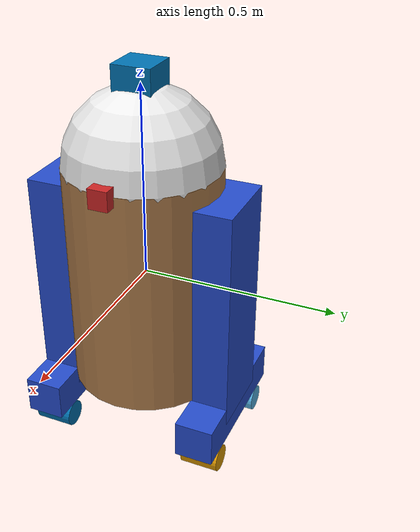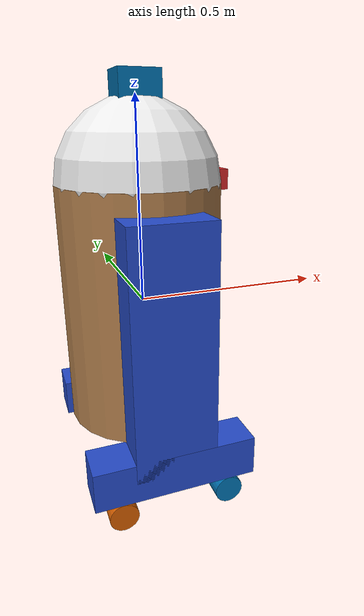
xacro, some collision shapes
<?xml version="1.0"?>
<robot name="r2d2_bot" xmlns:xacro="http://www.ros.org/wiki/xacro">

  <xacro:include filename="$(find r2d2_bot)/urdf/r2d2_bot.gazebo" />

    <link name="robot_footprint"></link>

    <joint name="robot_footprint_joint" type="fixed">
        <origin xyz="0 0 0" rpy="0 0 0"/>
        <parent link="robot_footprint"/>
        <child link="chassis"/>
    </joint>

    <link name='chassis'>
        <pose>0 0 0.1 0 0 0</pose>

        <inertial>
            <mass value="15.0"/>
            <origin xyz="0.0 0 0" rpy=" 0 0 0"/>
            <inertia
                    ixx="0.1" ixy="0" ixz="0"
                    iyy="0.1" iyz="0"
                    izz="0.1"
            />
        </inertial>

        <collision name='collision'>
            <origin xyz="0 0 0" rpy=" 0 0 0"/>
            <geometry>
                <cylinder length="0.6" radius="0.2"/>
            </geometry>
        </collision>

        <visual name='chassis_visual'>
            <origin xyz="0 0 0" rpy=" 0 0 0"/>
            <geometry>
                <cylinder length="0.6" radius="0.2"/>
            </geometry>
        </visual>

    </link>

    <link name="right_leg">
        <pose>0 0 0.1 0 0 0</pose>
        <inertial>
            <mass value="5.0"/>
            <origin xyz="0.0 0 -0.3" rpy=" 0 1.5707 0"/>
            <inertia
                    ixx="0.1" ixy="0" ixz="0"
                    iyy="0.1" iyz="0"
                    izz="0.1"
            />
        </inertial>
        <collision name='left_wheel_collision'>
            <origin xyz="0.0 0 -0.3" rpy=" 0 1.5707 0"/>
            <geometry>
                <cylinder radius="0.1" length="0.05"/>
            </geometry>
        </collision>
        <visual>
            <geometry>
                <box size="0.6 0.1 0.2"/>
            </geometry>
            <origin rpy="0 1.57075 0" xyz="0 0 -0.3"/>
        </visual>
    </link>

    <joint name="base_to_right_leg" type="fixed">
        <parent link="chassis"/>
        <child link="right_leg"/>
        <origin xyz="0 -0.22 0.25" rpy="0 0 0"/>
        <axis xyz="0 1 0" rpy="0 0 0" />
    </joint>

    <link name="right_base">
        <pose>0 0 0.1 0 0 0</pose>
        <inertial>
            <mass value="5.0"/>
            <origin xyz="0.0 0 0" rpy=" 0 0 0"/>
            <inertia
                    ixx="0.1" ixy="0" ixz="0"
                    iyy="0.1" iyz="0"
                    izz="0.1"
            />
        </inertial>
        <collision name='left_wheel_collision'>
            <origin xyz="0 0 0" rpy=" 0 0 0"/>
            <geometry>
                <box size="0.4 0.1 0.1"/>
            </geometry>
        </collision>
        <visual>
            <origin xyz="0 0 0" rpy=" 0 0 0"/>
            <geometry>
                <box size="0.4 0.1 0.1"/>
            </geometry>
        </visual>
    </link>

    <joint name="right_base_joint" type="fixed">
        <parent link="right_leg"/>
        <child link="right_base"/>
        <origin xyz="0 0 -0.6"/>
    </joint>

    <link name="right_front_wheel">
        <pose>0 0 0.1 0 0 0</pose>
        <collision name='collision'>
            <origin rpy="1.57075 0 0" xyz="0 0 0"/>
            <geometry>
                <cylinder length="0.1" radius="0.035"/>
            </geometry>
        </collision>

        <visual>
            <origin rpy="1.57075 0 0" xyz="0 0 0"/>
            <geometry>
                <cylinder length="0.1" radius="0.035"/>
            </geometry>
        </visual>
    </link>
    <joint name="right_front_wheel_joint" type="fixed">
        <parent link="right_base"/>
        <child link="right_front_wheel"/>
        <origin rpy="0 0 0" xyz="0.133333333333 0 -0.085"/>
        <axis xyz="0 1 0" rpy="0 0 0"/>
    </joint>
    <link name="right_back_wheel">
        <pose>0 0 0.1 0 0 0</pose>
        <collision name='collision'>
            <origin rpy="1.57075 0 0" xyz="0 0 0"/>
            <geometry>
                <cylinder length="0.1" radius="0.035"/>
            </geometry>
        </collision>

        <visual>
            <origin rpy="1.57075 0 0" xyz="0 0 0"/>
            <geometry>
                <cylinder length="0.1" radius="0.035"/>
            </geometry>
        </visual>
    </link>
    <joint name="right_back_wheel_joint" type="fixed">
        <parent link="right_base"/>
        <child link="right_back_wheel"/>
        <origin rpy="0 0 0" xyz="-0.133333333333 0 -0.085"/>
    </joint>

    <link name="left_leg">
        <collision name='collision'>
            <origin rpy="0 1.57075 0" xyz="0 0 -0.3"/>
            <geometry>
                <cylinder length="0.1" radius="0.035"/>
            </geometry>
        </collision>
        <visual>
            <geometry>
                <box size="0.6 0.1 0.2"/>
            </geometry>
            <origin rpy="0 1.57075 0" xyz="0 0 -0.3"/>
        </visual>
    </link>

    <joint name="base_to_left_leg" type="fixed">
        <parent link="chassis"/>
        <child link="left_leg"/>
        <origin xyz="0 0.22 0.25"/>
    </joint>

    <link name="left_base">
        <collision name='left_wheel_collision'>
            <origin xyz="0 0 0" rpy=" 0 0 0"/>
            <geometry>
                <box size="0.4 0.1 0.1"/>
            </geometry>
        </collision>
        <visual>
            <geometry>
                <box size="0.4 0.1 0.1"/>
            </geometry>
            <origin xyz="0 0 0" rpy=" 0 0 0"/>
        </visual>
    </link>

    <joint name="left_base_joint" type="fixed">
        <parent link="left_leg"/>
        <child link="left_base"/>
        <origin xyz="0 0 -0.6"/>
    </joint>

    <link name="left_front_wheel">
        <pose>0 0 0.1 0 0 0</pose>
        <collision name='collision'>
            <origin rpy="1.57075 0 0" xyz="0 0 0"/>
            <geometry>
                <cylinder length="0.1" radius="0.035"/>
            </geometry>
        </collision>

        <visual>
            <origin rpy="1.57075 0 0" xyz="0 0 0"/>
            <geometry>
                <cylinder length="0.1" radius="0.035"/>
            </geometry>
        </visual>
    </link>
    <joint name="left_front_wheel_joint" type="fixed">
        <parent link="left_base"/>
        <child link="left_front_wheel"/>
        <origin rpy="0 0 0" xyz="0.133333333333 0 -0.085"/>
        <axis xyz="0 1 0" rpy="0 0 0"/>
    </joint>
    <link name="left_back_wheel">
        <pose>0 0 0.1 0 0 0</pose>
        <collision name='collision'>
            <origin rpy="1.57075 0 0" xyz="0 0 0"/>
            <geometry>
                <cylinder length="0.1" radius="0.035"/>
            </geometry>
        </collision>

        <visual>
            <origin rpy="1.57075 0 0" xyz="0 0 0"/>
            <geometry>
                <cylinder length="0.1" radius="0.035"/>
            </geometry>
        </visual>
    </link>
    <joint name="left_back_wheel_joint" type="fixed">
        <parent link="left_base"/>
        <child link="left_back_wheel"/>
        <origin rpy="0 0 0" xyz="-0.133333333333 0 -0.085"/>
    </joint>

    <link name="head">
        <visual>
            <geometry>
                <sphere radius="0.2"/>
            </geometry>
        </visual>
    </link>
    <joint name="head_swivel" type="fixed">
        <parent link="chassis"/>
        <child link="head"/>
        <origin xyz="0 0 0.3"/>
    </joint>

    <link name='camera'>
        <pose>0 0 0.1 0 0 0</pose>

        <inertial>
            <mass value="0.1"/>
            <origin xyz="0.0 0 0" rpy=" 0 0 0"/>
            <inertia
                    ixx="1e-6" ixy="0" ixz="0"
                    iyy="1e-6" iyz="0"
                    izz="1e-6"
            />
        </inertial>

        <collision name='camera_collision'>
            <origin xyz="0.0 0 0" rpy=" 0 0 0"/>
            <geometry>
                <box size=".05 .05 .05"/>
            </geometry>
        </collision>

        <visual name='camera_visual'>
            <origin xyz="0.0 0 0" rpy=" 0 0 0"/>
            <geometry>
                <box size=".05 .05 .05"/>
            </geometry>
        </visual>
    </link>

    <joint type="fixed" name="camera_joint">
        <origin xyz="0.2 0 0" rpy="0 0 0"/>
        <child link="camera"/>
        <parent link="head"/>
        <axis xyz="0 1 0" rpy="0 0 0"/>
        <limit effort="10000" velocity="1000"/>
        <joint_properties damping="1.0" friction="1.0"/>
    </joint>

    <!--Laser RangeFinder-->
    <link name='hokuyo'>
        <pose>0 0 0.1 0 0 0</pose>

        <inertial>
            <mass value="0.1"/>
            <origin xyz="0.0 0 0" rpy=" 0 0 0"/>
            <inertia
                    ixx="1e-6" ixy="0" ixz="0"
                    iyy="1e-6" iyz="0"
                    izz="1e-6"
            />
        </inertial>

        <collision name='hokuyo_collision'>
            <origin xyz="0.0 0 0" rpy=" 0 0 0"/>
            <geometry>
                <box size=".1 .1 .1"/>
            </geometry>
        </collision>

        <!-- mesh file used for visuals for rangefinder -->
        <visual name='hokuyo_visual'>
            <origin xyz="0.0 0 0" rpy=" 0 0 0"/>
            <geometry>
                <mesh filename="package://r2d2_bot/meshes/hokuyo.dae"/>
            </geometry>
        </visual>

    </link>

    <joint type="fixed" name="hokuyo_joint">
        <origin xyz="0 0 .2" rpy="0 0 0"/>
        <child link="hokuyo"/>
        <parent link="head"/>
        <axis xyz="0 0 0" rpy="0 0 0"/>
        <limit effort="10000" velocity="1000"/>
        <joint_properties damping="1.0" friction="1.0"/>
    </joint>

    <gazebo reference="chassis">
        <material>Gazebo/Wood</material>
    </gazebo>
    <gazebo reference="right_leg">
        <material>Gazebo/Blue</material>
    </gazebo>

    <gazebo reference="right_base">
        <material>Gazebo/Blue</material>
    </gazebo>
    <gazebo reference="left_leg">
        <material>Gazebo/Blue</material>
    </gazebo>
    <gazebo reference="left_base">
        <material>Gazebo/Blue</material>
    </gazebo>
    <gazebo reference="right_front_wheel">
        <material>Gazebo/CoM</material>
    </gazebo>
    <gazebo reference="right_back_wheel">
        <material>Gazebo/CoM</material>
    </gazebo>
    <gazebo reference="left_front_wheel">
        <material>Gazebo/CoM</material>
    </gazebo>
    <gazebo reference="left_back_wheel">
        <material>Gazebo/CoM</material>
    </gazebo>
    <gazebo reference="head">
        <material>Gazebo/White</material>
    </gazebo>
    <gazebo reference="camera">
        <material>Gazebo/Red</material>
    </gazebo>

</robot>
